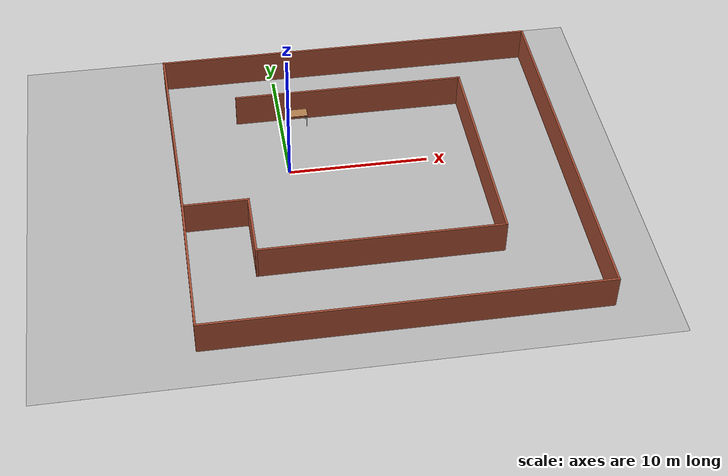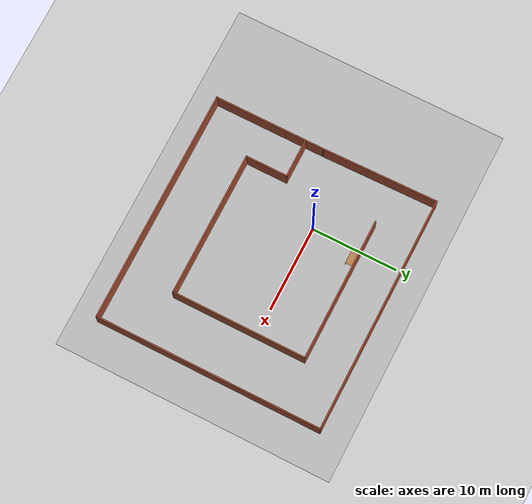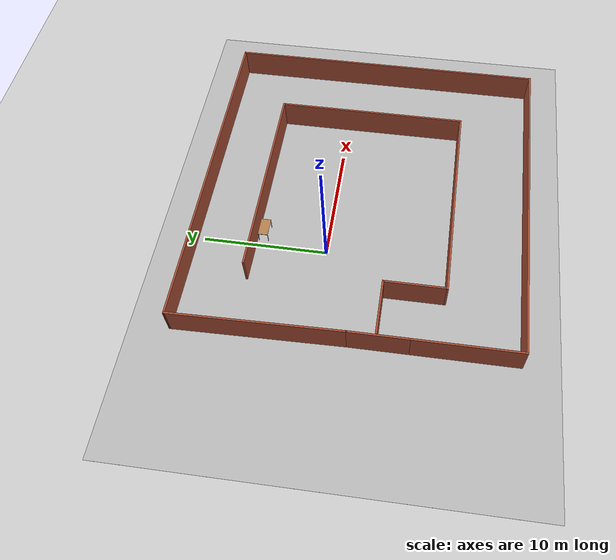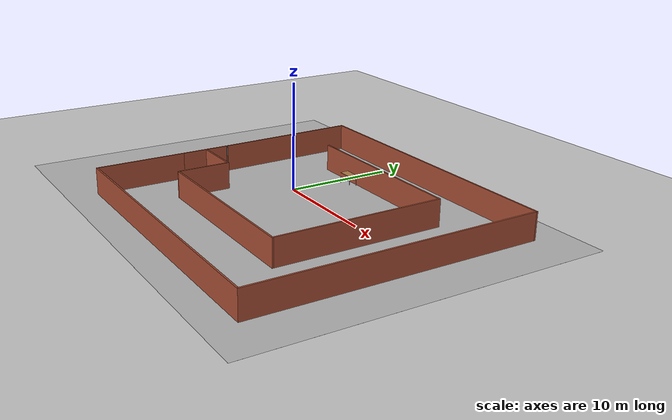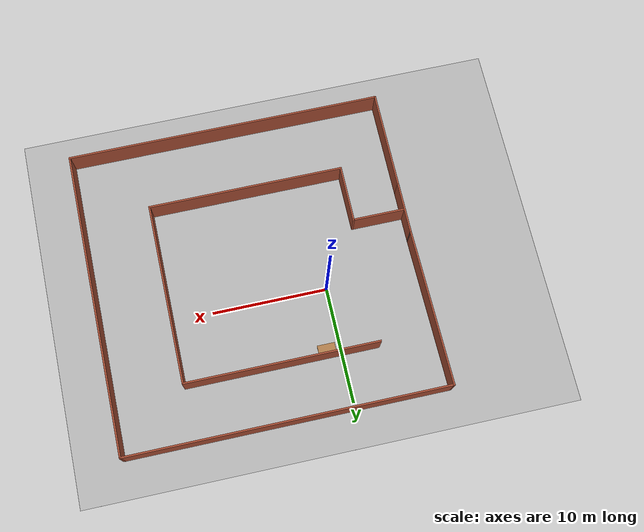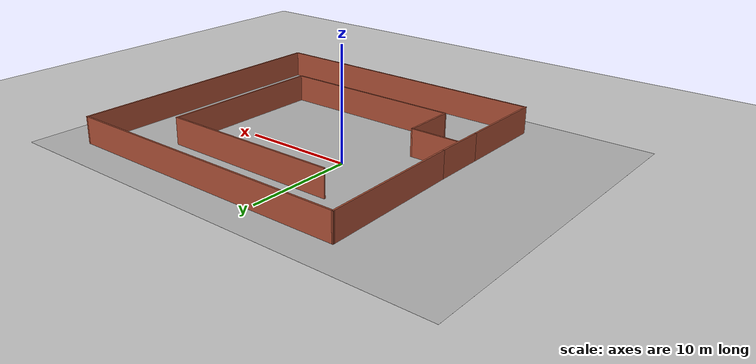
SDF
<sdf version="1.6">
 <world name="default">
  <light name="sun" type="directional">
   <pose>0 0 10 0 -0 0</pose>
   <diffuse>0.8 0.8 0.8 1</diffuse>
   <specular>0.2 0.2 0.2 1</specular>
   <attenuation>
    <range>1000</range>
    <constant>0.9</constant>
    <linear>0.01</linear>
    <quadratic>0.001</quadratic>
   </attenuation>
   <direction>-0.5 0.1 -0.9</direction>
  </light>
  <model name="ground_plane">
   <static>1</static>
   <link name="link">
    <collision name="collision">
     <geometry><plane><normal>0 0 1</normal><size>100 100</size></plane></geometry>
     <surface><friction><ode><mu>100</mu><mu2>50</mu2></ode></friction></surface>
    </collision>
    <visual name="visual">
     <cast_shadows>0</cast_shadows>
     <geometry><plane><normal>0 0 1</normal><size>100 100</size></plane></geometry>
     <material>
      <script><uri>file://media/materials/scripts/gazebo.material</uri><name>Gazebo/Grey</name></script>
     </material>
    </visual>
   </link>
  </model>
  <gravity>0 0 -9.8</gravity>
  <magnetic_field>6e-06 2.3e-05 -4.2e-05</magnetic_field>
  <atmosphere type="adiabatic"/>
  <physics name="default_physics" default="0" type="ode">
   <max_step_size>0.001</max_step_size>
   <real_time_factor>1</real_time_factor>
   <real_time_update_rate>1000</real_time_update_rate>
  </physics>
  <scene><ambient>0.4 0.4 0.4 1</ambient><background>0.7 0.7 0.7 1</background><shadows>1</shadows></scene>
  <audio><device>default</device></audio>
  <spherical_coordinates>
   <surface_model>EARTH_WGS84</surface_model>
   <latitude_deg>0</latitude_deg>
   <longitude_deg>0</longitude_deg>
   <elevation>0</elevation>
   <heading_deg>0</heading_deg>
  </spherical_coordinates>
  <model name="mazeWorld">
   <pose>5.63635 -2.54328 0 0 -0 0</pose>
   <link name="Wall_10">
    <collision name="Wall_10_Collision">
     <geometry><box><size>13.5523 0.15 2.5</size></box></geometry>
     <pose>0 0 1.25 0 -0 0</pose>
    </collision>
    <visual name="Wall_10_Visual">
     <pose>0 0 1.25 0 -0 0</pose>
     <geometry><box><size>13.5523 0.15 2.5</size></box></geometry>
     <material>
      <script><uri>file://media/materials/scripts/gazebo.material</uri><name>Gazebo/Bricks</name></script>
      <ambient>1 1 1 1</ambient>
     </material>
     <meta><layer>0</layer></meta>
    </visual>
    <pose>-13.6743 6.47431 0 0 -0 -1.55214</pose>
   </link>
   <link name="Wall_12">
    <collision name="Wall_12_Collision">
     <geometry><box><size>16.75 0.15 2.5</size></box></geometry>
     <pose>0 0 1.25 0 -0 0</pose>
    </collision>
    <visual name="Wall_12_Visual">
     <pose>0 0 1.25 0 -0 0</pose>
     <geometry><box><size>16.75 0.15 2.5</size></box></geometry>
     <material>
      <script><uri>file://media/materials/scripts/gazebo.material</uri><name>Gazebo/Bricks</name></script>
      <ambient>1 1 1 1</ambient>
     </material>
     <meta><layer>0</layer></meta>
    </visual>
    <pose>-0.493258 8.36187 0 0 -0 0</pose>
   </link>
   <link name="Wall_13">
    <collision name="Wall_13_Collision">
     <geometry><box><size>15.75 0.15 2.5</size></box></geometry>
     <pose>0 0 1.25 0 -0 0</pose>
    </collision>
    <visual name="Wall_13_Visual">
     <pose>0 0 1.25 0 -0 0</pose>
     <geometry><box><size>15.75 0.15 2.5</size></box></geometry>
     <material>
      <script><uri>file://media/materials/scripts/gazebo.material</uri><name>Gazebo/Bricks</name></script>
      <ambient>1 1 1 1</ambient>
     </material>
     <meta><layer>0</layer></meta>
    </visual>
    <pose>7.80674 0.561867 0 0 -0 -1.5708</pose>
   </link>
   <link name="Wall_14">
    <collision name="Wall_14_Collision">
     <geometry><box><size>17 0.15 2.5</size></box></geometry>
     <pose>0 0 1.25 0 -0 0</pose>
    </collision>
    <visual name="Wall_14_Visual">
     <pose>0 0 1.25 0 -0 0</pose>
     <geometry><box><size>17 0.15 2.5</size></box></geometry>
     <material>
      <script><uri>file://media/materials/scripts/gazebo.material</uri><name>Gazebo/Bricks</name></script>
      <ambient>1 1 1 1</ambient>
     </material>
     <meta><layer>0</layer></meta>
    </visual>
    <pose>-0.618258 -7.23813 0 0 -0 3.14159</pose>
   </link>
   <link name="Wall_15">
    <collision name="Wall_15_Collision">
     <geometry><box><size>5 0.15 2.5</size></box></geometry>
     <pose>0 0 1.25 0 -0 0</pose>
    </collision>
    <visual name="Wall_15_Visual">
     <pose>0 0 1.25 0 -0 0</pose>
     <geometry><box><size>5 0.15 2.5</size></box></geometry>
     <material>
      <script><uri>file://media/materials/scripts/gazebo.material</uri><name>Gazebo/Bricks</name></script>
      <ambient>1 1 1 1</ambient>
     </material>
     <meta><layer>0</layer></meta>
    </visual>
    <pose>-9.04326 -4.81313 0 0 -0 1.5708</pose>
   </link>
   <link name="Wall_16">
    <collision name="Wall_16_Collision">
     <geometry><box><size>4.5 0.15 2.5</size></box></geometry>
     <pose>0 0 1.25 0 -0 0</pose>
    </collision>
    <visual name="Wall_16_Visual">
     <pose>0 0 1.25 0 -0 0</pose>
     <geometry><box><size>4.5 0.15 2.5</size></box></geometry>
     <material>
      <script><uri>file://media/materials/scripts/gazebo.material</uri><name>Gazebo/Bricks</name></script>
      <ambient>1 1 1 1</ambient>
     </material>
     <meta><layer>0</layer></meta>
    </visual>
    <pose>-11.2183 -2.38813 0 0 -0 3.14159</pose>
   </link>
   <link name="Wall_2">
    <collision name="Wall_2_Collision">
     <geometry><box><size>4.75 0.15 2.5</size></box></geometry>
     <pose>0 0 1.25 0 -0 0</pose>
    </collision>
    <visual name="Wall_2_Visual">
     <pose>0 0 1.25 0 -0 0</pose>
     <geometry><box><size>4.75 0.15 2.5</size></box></geometry>
     <material>
      <script><uri>file://media/materials/scripts/gazebo.material</uri><name>Gazebo/Bricks</name></script>
      <ambient>1 1 1 1</ambient>
     </material>
     <meta><layer>0</layer></meta>
    </visual>
    <pose>-13.5493 -2.52569 0 0 -0 1.5708</pose>
   </link>
   <link name="Wall_3">
    <collision name="Wall_3_Collision">
     <geometry><box><size>0.15 0.15 2.5</size></box></geometry>
     <pose>0 0 1.25 0 -0 0</pose>
    </collision>
    <visual name="Wall_3_Visual">
     <pose>0 0 1.25 0 -0 0</pose>
     <geometry><box><size>0.15 0.15 2.5</size></box></geometry>
     <material>
      <script><uri>file://media/materials/scripts/gazebo.material</uri><name>Gazebo/Grey</name></script>
      <ambient>1 1 1 1</ambient>
     </material>
     <meta><layer>0</layer></meta>
    </visual>
    <pose>-13.5493 -0.225692 0 0 -0 0</pose>
   </link>
   <link name="Wall_4">
    <collision name="Wall_4_Collision">
     <geometry><box><size>0.15 0.15 2.5</size></box></geometry>
     <pose>0 0 1.25 0 -0 0</pose>
    </collision>
    <visual name="Wall_4_Visual">
     <pose>0 0 1.25 0 -0 0</pose>
     <geometry><box><size>0.15 0.15 2.5</size></box></geometry>
     <material>
      <script><uri>file://media/materials/scripts/gazebo.material</uri><name>Gazebo/Grey</name></script>
      <ambient>1 1 1 1</ambient>
     </material>
     <meta><layer>0</layer></meta>
    </visual>
    <pose>-13.5493 -0.225692 0 0 -0 0</pose>
   </link>
   <link name="Wall_6">
    <collision name="Wall_6_Collision">
     <geometry><box><size>8.5 0.15 2.5</size></box></geometry>
     <pose>0 0 1.25 0 -0 0</pose>
    </collision>
    <visual name="Wall_6_Visual">
     <pose>0 0 1.25 0 -0 0</pose>
     <geometry><box><size>8.5 0.15 2.5</size></box></geometry>
     <material>
      <script><uri>file://media/materials/scripts/gazebo.material</uri><name>Gazebo/Bricks</name></script>
      <ambient>1 1 1 1</ambient>
     </material>
     <meta><layer>0</layer></meta>
    </visual>
    <pose>-13.5493 -9.00069 0 0 -0 -1.5708</pose>
   </link>
   <link name="Wall_7">
    <collision name="Wall_7_Collision">
     <geometry><box><size>27.5 0.15 2.5</size></box></geometry>
     <pose>0 0 1.25 0 -0 0</pose>
    </collision>
    <visual name="Wall_7_Visual">
     <pose>0 0 1.25 0 -0 0</pose>
     <geometry><box><size>27.5 0.15 2.5</size></box></geometry>
     <material>
      <script><uri>file://media/materials/scripts/gazebo.material</uri><name>Gazebo/Bricks</name></script>
      <ambient>1 1 1 1</ambient>
     </material>
     <meta><layer>0</layer></meta>
    </visual>
    <pose>0.125693 -13.1757 0 0 -0 0</pose>
   </link>
   <link name="Wall_8">
    <collision name="Wall_8_Collision">
     <geometry><box><size>26.5 0.15 2.5</size></box></geometry>
     <pose>0 0 1.25 0 -0 0</pose>
    </collision>
    <visual name="Wall_8_Visual">
     <pose>0 0 1.25 0 -0 0</pose>
     <geometry><box><size>26.5 0.15 2.5</size></box></geometry>
     <material>
      <script><uri>file://media/materials/scripts/gazebo.material</uri><name>Gazebo/Bricks</name></script>
      <ambient>1 1 1 1</ambient>
     </material>
     <meta><layer>0</layer></meta>
    </visual>
    <pose>13.8007 -0.000692 0 0 -0 1.5708</pose>
   </link>
   <link name="Wall_9">
    <collision name="Wall_9_Collision">
     <geometry><box><size>27.75 0.15 2.5</size></box></geometry>
     <pose>0 0 1.25 0 -0 0</pose>
    </collision>
    <visual name="Wall_9_Visual">
     <pose>0 0 1.25 0 -0 0</pose>
     <geometry><box><size>27.75 0.15 2.5</size></box></geometry>
     <material>
      <script><uri>file://media/materials/scripts/gazebo.material</uri><name>Gazebo/Bricks</name></script>
      <ambient>1 1 1 1</ambient>
     </material>
     <meta><layer>0</layer></meta>
    </visual>
    <pose>0.000693 13.1743 0 0 -0 3.14159</pose>
   </link>
   <static>1</static>
  </model>
  <model name="Floor_room">
   <link name="main">
    <pose>0 0 0.01 0 -0 0</pose>
    <inertial>
     <inertia><ixx>0</ixx><ixy>0</ixy><ixz>0</ixz><iyy>0</iyy><iyz>0</iyz><izz>0</izz></inertia>
     <mass>0</mass>
    </inertial>
    <visual name="main_Visual">
     <geometry><box><size>42.2917 32.4329 0.001</size></box></geometry>
     <material>
      <script>
       <uri>model://Floor_room/materials/scripts</uri>
       <uri>model://Floor_room/materials/textures</uri>
       <name>floor_room</name>
      </script>
     </material>
    </visual>
    <collision name="main_Collision">
     <geometry><box><size>42.2917 32.4329 0.001</size></box></geometry>
     <surface>
      <friction>
       <ode><mu>1</mu><mu2>1</mu2><fdir1>0 0 0</fdir1><slip1>0</slip1><slip2>0</slip2></ode>
       <torsional>
        <coefficient>1</coefficient>
        <patch_radius>0</patch_radius>
        <surface_radius>0</surface_radius>
        <use_patch_radius>1</use_patch_radius>
        <ode><slip>0</slip></ode>
       </torsional>
      </friction>
      <bounce><restitution_coefficient>0</restitution_coefficient><threshold>1e+06</threshold></bounce>
      <contact>
       <collide_without_contact>0</collide_without_contact>
       <collide_without_contact_bitmask>1</collide_without_contact_bitmask>
       <collide_bitmask>1</collide_bitmask>
       <ode>
        <soft_cfm>0</soft_cfm>
        <soft_erp>0.2</soft_erp>
        <kp>1e+13</kp>
        <kd>1</kd>
        <max_vel>0.01</max_vel>
        <min_depth>0</min_depth>
       </ode>
       <bullet>
        <split_impulse>1</split_impulse>
        <split_impulse_penetration_threshold>-0.01</split_impulse_penetration_threshold>
        <soft_cfm>0</soft_cfm>
        <soft_erp>0.2</soft_erp>
        <kp>1e+13</kp>
        <kd>1</kd>
       </bullet>
      </contact>
     </surface>
    </collision>
   </link>
   <static>1</static>
   <pose>2.49465 -2.39177 0 0 -0 0</pose>
  </model>
  <model name="table">
   <static>1</static>
   <link name="link">
    <collision name="surface">
     <pose>0 0 1 0 -0 0</pose>
     <geometry><box><size>1.5 0.8 0.03</size></box></geometry>
     <surface><friction><ode><mu>0.6</mu><mu2>0.6</mu2></ode></friction></surface>
    </collision>
    <visual name="visual1">
     <pose>0 0 1 0 -0 0</pose>
     <geometry><box><size>1.5 0.8 0.03</size></box></geometry>
     <material>
      <script><uri>file://media/materials/scripts/gazebo.material</uri><name>Gazebo/Wood</name></script>
     </material>
    </visual>
    <collision name="front_left_leg">
     <pose>0.68 0.38 0.5 0 -0 0</pose>
     <geometry><cylinder><radius>0.02</radius><length>1</length></cylinder></geometry>
    </collision>
    <visual name="front_left_leg">
     <pose>0.68 0.38 0.5 0 -0 0</pose>
     <geometry><cylinder><radius>0.02</radius><length>1</length></cylinder></geometry>
     <material>
      <script><uri>file://media/materials/scripts/gazebo.material</uri><name>Gazebo/Grey</name></script>
     </material>
    </visual>
    <collision name="front_right_leg">
     <pose>0.68 -0.38 0.5 0 -0 0</pose>
     <geometry><cylinder><radius>0.02</radius><length>1</length></cylinder></geometry>
    </collision>
    <visual name="front_right_leg">
     <pose>0.68 -0.38 0.5 0 -0 0</pose>
     <geometry><cylinder><radius>0.02</radius><length>1</length></cylinder></geometry>
     <material>
      <script><uri>file://media/materials/scripts/gazebo.material</uri><name>Gazebo/Grey</name></script>
     </material>
    </visual>
    <collision name="back_right_leg">
     <pose>-0.68 -0.38 0.5 0 -0 0</pose>
     <geometry><cylinder><radius>0.02</radius><length>1</length></cylinder></geometry>
    </collision>
    <visual name="back_right_leg">
     <pose>-0.68 -0.38 0.5 0 -0 0</pose>
     <geometry><cylinder><radius>0.02</radius><length>1</length></cylinder></geometry>
     <material>
      <script><uri>file://media/materials/scripts/gazebo.material</uri><name>Gazebo/Grey</name></script>
     </material>
    </visual>
    <collision name="back_left_leg">
     <pose>-0.68 0.38 0.5 0 -0 0</pose>
     <geometry><cylinder><radius>0.02</radius><length>1</length></cylinder></geometry>
    </collision>
    <visual name="back_left_leg">
     <pose>-0.68 0.38 0.5 0 -0 0</pose>
     <geometry><cylinder><radius>0.02</radius><length>1</length></cylinder></geometry>
     <material>
      <script><uri>file://media/materials/scripts/gazebo.material</uri><name>Gazebo/Grey</name></script>
     </material>
    </visual>
   </link>
   <pose>1.21515 5.225 0 0 -0 0</pose>
  </model>
 </world>
</sdf>
